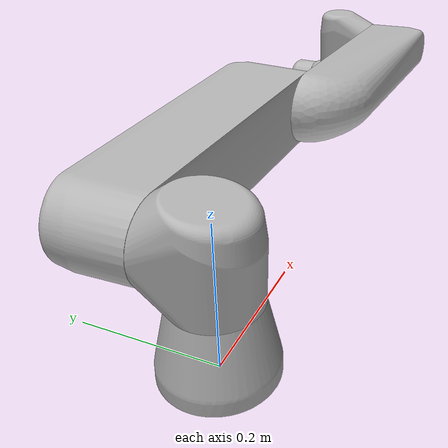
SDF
<sdf version='1.7'>
  <model name='ur5e'>
    <joint name='world_joint' type='fixed'>
      <pose relative_to='__model__'>0 0 0 0 -0 0</pose>
      <parent>world</parent>
      <child>base_link</child>
    </joint>
    <link name='base_link'>
      <pose relative_to='world_joint'>0 0 0 0 -0 0</pose>
      <inertial>
        <pose>0 0 0 0 -0 0</pose>
        <mass>4</mass>
        <inertia>
          <ixx>0.00443333</ixx>
          <ixy>0</ixy>
          <ixz>0</ixz>
          <iyy>0.00443333</iyy>
          <iyz>0</iyz>
          <izz>0.0072</izz>
        </inertia>
      </inertial>
      <visual name='base_link_visual'>
        <pose>0 0 0 0 -0 0</pose>
        <geometry>
          <mesh>
            <scale>1 1 1</scale>
            <uri>model://ur5e_description/meshes/visual/base.dae</uri>
          </mesh>
        </geometry>
      </visual>
    </link>
    <joint name='shoulder_pan_joint' type='revolute'>
      <pose relative_to='base_link'>0 0 0.163 0 -0 0</pose>
      <parent>base_link</parent>
      <child>shoulder_link</child>
      <axis>
        <xyz>0 0 1</xyz>
        <limit>
          <lower>-6.28319</lower>
          <upper>6.28319</upper>
          <effort>150</effort>
          <velocity>3.14</velocity>
        </limit>
        <dynamics>
          <damping>0</damping>
          <friction>0</friction>
          <spring_reference>0</spring_reference>
          <spring_stiffness>0</spring_stiffness>
        </dynamics>
      </axis>
    </joint>
    <link name='shoulder_link'>
      <pose relative_to='shoulder_pan_joint'>0 0 0 0 -0 0</pose>
      <inertial>
        <pose>0 0 0 0 -0 0</pose>
        <mass>3.7</mass>
        <inertia>
          <ixx>0.0102675</ixx>
          <ixy>0</ixy>
          <ixz>0</ixz>
          <iyy>0.0102675</iyy>
          <iyz>0</iyz>
          <izz>0.00666</izz>
        </inertia>
      </inertial>
      <visual name='shoulder_link_visual'>
        <pose>0 0 0 0 -0 0</pose>
        <geometry>
          <mesh>
            <scale>1 1 1</scale>
            <uri>model://ur5e_description/meshes/visual/shoulder.dae</uri>
          </mesh>
        </geometry>
      </visual>

    </link>
    <joint name='shoulder_lift_joint' type='revolute'>
      <pose relative_to='shoulder_link'>0 0.138 0 0 1.5708 0</pose>
      <parent>shoulder_link</parent>
      <child>upper_arm_link</child>
      <axis>
        <xyz>0 1 0</xyz>
        <limit>
          <lower>-6.28319</lower>
          <upper>6.28319</upper>
          <effort>150</effort>
          <velocity>3.14</velocity>
        </limit>
        <dynamics>
          <damping>0</damping>
          <friction>0</friction>
          <spring_reference>0</spring_reference>
          <spring_stiffness>0</spring_stiffness>
        </dynamics>
      </axis>
    </joint>
    <link name='upper_arm_link'>
      <pose relative_to='shoulder_lift_joint'>0 0 0 0 -0 0</pose>
      <inertial>
        <pose>0 0 0.2125 0 -0 0</pose>
        <mass>8.393</mass>
        <inertia>
          <ixx>0.133886</ixx>
          <ixy>0</ixy>
          <ixz>0</ixz>
          <iyy>0.133886</iyy>
          <iyz>0</iyz>
          <izz>0.0151074</izz>
        </inertia>
      </inertial>
      <visual name='upper_arm_link_visual'>
        <pose>0 0 0 0 -0 0</pose>
        <geometry>
          <mesh>
            <scale>1 1 1</scale>
            <uri>model://ur5e_description/meshes/visual/upperarm.dae</uri>
          </mesh>
        </geometry>
      </visual>

    </link>
    <joint name='elbow_joint' type='revolute'>
      <pose relative_to='upper_arm_link'>0 -0.131 0.425 0 -0 0</pose>
      <parent>upper_arm_link</parent>
      <child>forearm_link</child>
      <axis>
        <xyz>0 1 0</xyz>
        <limit>
          <lower>-3.14159</lower>
          <upper>3.14159</upper>
          <effort>150</effort>
          <velocity>3.14</velocity>
        </limit>
        <dynamics>
          <damping>0</damping>
          <friction>0</friction>
          <spring_reference>0</spring_reference>
          <spring_stiffness>0</spring_stiffness>
        </dynamics>
      </axis>
    </joint>
    <link name='forearm_link'>
      <pose relative_to='elbow_joint'>0 0 0 0 -0 0</pose>
      <inertial>
        <pose>0 0 0.196 0 -0 0</pose>
        <mass>2.275</mass>
        <inertia>
          <ixx>0.0311796</ixx>
          <ixy>0</ixy>
          <ixz>0</ixz>
          <iyy>0.0311796</iyy>
          <iyz>0</iyz>
          <izz>0.004095</izz>
        </inertia>
      </inertial>
      <visual name='forearm_link_visual'>
        <pose>0 0 0 0 -0 0</pose>
        <geometry>
          <mesh>
            <scale>1 1 1</scale>
            <uri>model://ur5e_description/meshes/visual/forearm.dae</uri>
          </mesh>
        </geometry>
      </visual>

    </link>
    <joint name='wrist_1_joint' type='revolute'>
      <pose relative_to='forearm_link'>0 0 0.392 0 1.5708 0</pose>
      <parent>forearm_link</parent>
      <child>wrist_1_link</child>
      <axis>
        <xyz>0 1 0</xyz>
        <limit>
          <lower>-6.28319</lower>
          <upper>6.28319</upper>
          <effort>28</effort>
          <velocity>6.28</velocity>
        </limit>
        <dynamics>
          <damping>0</damping>
          <friction>0</friction>
          <spring_reference>0</spring_reference>
          <spring_stiffness>0</spring_stiffness>
        </dynamics>
      </axis>
    </joint>
    <link name='wrist_1_link'>
      <pose relative_to='wrist_1_joint'>0 0 0 0 -0 0</pose>
      <inertial>
        <pose>0 0.127 0 0 -0 0</pose>
        <mass>1.219</mass>
        <inertia>
          <ixx>0.0025599</ixx>
          <ixy>0</ixy>
          <ixz>0</ixz>
          <iyy>0.0025599</iyy>
          <iyz>0</iyz>
          <izz>0.0021942</izz>
        </inertia>
      </inertial>
      <visual name='wrist_1_link_visual'>
        <pose>0 0 0 0 -0 0</pose>
        <geometry>
          <mesh>
            <scale>1 1 1</scale>
            <uri>model://ur5e_description/meshes/visual/wrist1.dae</uri>
          </mesh>
        </geometry>
      </visual>

    </link>
    <joint name='wrist_2_joint' type='revolute'>
      <pose relative_to='wrist_1_link'>0 0.127 0 0 -0 0</pose>
      <parent>wrist_1_link</parent>
      <child>wrist_2_link</child>
      <axis>
        <xyz>0 0 1</xyz>
        <limit>
          <lower>-6.28319</lower>
          <upper>6.28319</upper>
          <effort>28</effort>
          <velocity>6.28</velocity>
        </limit>
        <dynamics>
          <damping>0</damping>
          <friction>0</friction>
          <spring_reference>0</spring_reference>
          <spring_stiffness>0</spring_stiffness>
        </dynamics>
      </axis>
    </joint>
    <link name='wrist_2_link'>
      <pose relative_to='wrist_2_joint'>0 0 0 0 -0 0</pose>
      <inertial>
        <pose>0 0 0.1 0 -0 0</pose>
        <mass>1.219</mass>
        <inertia>
          <ixx>0.0025599</ixx>
          <ixy>0</ixy>
          <ixz>0</ixz>
          <iyy>0.0025599</iyy>
          <iyz>0</iyz>
          <izz>0.0021942</izz>
        </inertia>
      </inertial>
      <visual name='wrist_2_link_visual'>
        <pose>0 0 0 0 -0 0</pose>
        <geometry>
          <mesh>
            <scale>1 1 1</scale>
            <uri>model://ur5e_description/meshes/visual/wrist2.dae</uri>
          </mesh>
        </geometry>
      </visual>

    </link>
    <joint name='wrist_3_joint' type='revolute'>
      <pose relative_to='wrist_2_link'>0 0 0.1 0 -0 0</pose>
      <parent>wrist_2_link</parent>
      <child>wrist_3_link</child>
      <axis>
        <xyz>0 1 0</xyz>
        <limit>
          <lower>-6.28319</lower>
          <upper>6.28319</upper>
          <effort>28</effort>
          <velocity>6.28</velocity>
        </limit>
        <dynamics>
          <damping>0</damping>
          <friction>0</friction>
          <spring_reference>0</spring_reference>
          <spring_stiffness>0</spring_stiffness>
        </dynamics>
      </axis>
    </joint>
    <link name='wrist_3_link'>
      <pose relative_to='wrist_3_joint'>0 0 0 0 -0 0</pose>
      <inertial>
        <pose>0 0.0771 0 1.5708 -0 0</pose>
        <mass>0.1879</mass>
        <inertia>
          <ixx>9.89041e-05</ixx>
          <ixy>0</ixy>
          <ixz>0</ixz>
          <iyy>9.89041e-05</iyy>
          <iyz>0</iyz>
          <izz>0.000132117</izz>
        </inertia>
      </inertial>
      <visual name='wrist_3_link_visual'>
        <pose>0 0 0 0 -0 0</pose>
        <geometry>
          <mesh>
            <scale>1 1 1</scale>
            <uri>model://ur5e_description/meshes/visual/wrist3.dae</uri>
          </mesh>
        </geometry>
      </visual>

    </link>
  </model>
</sdf>
